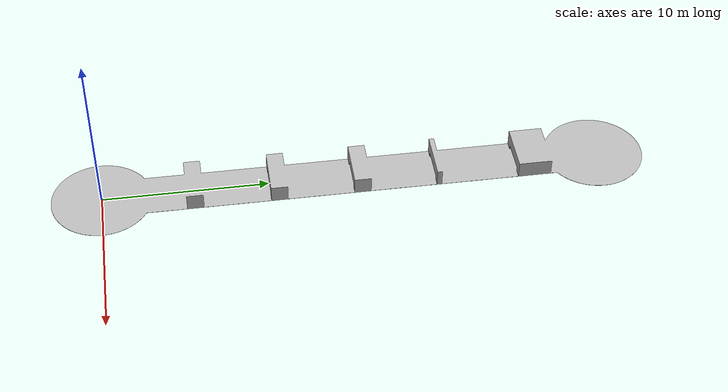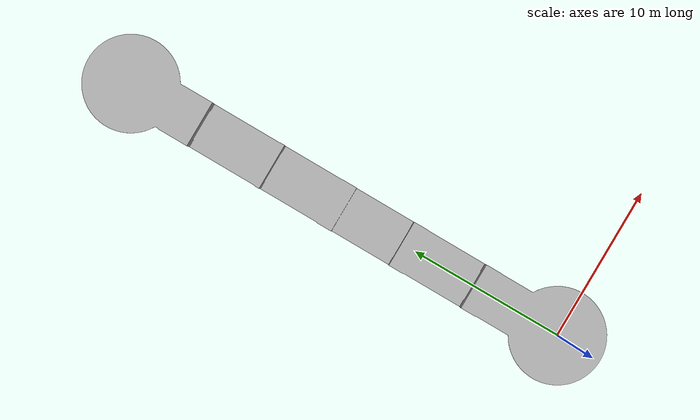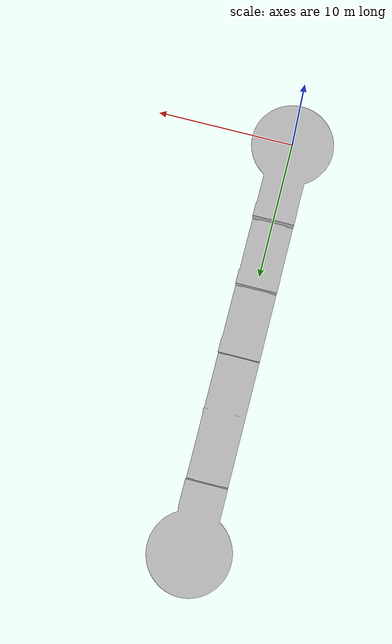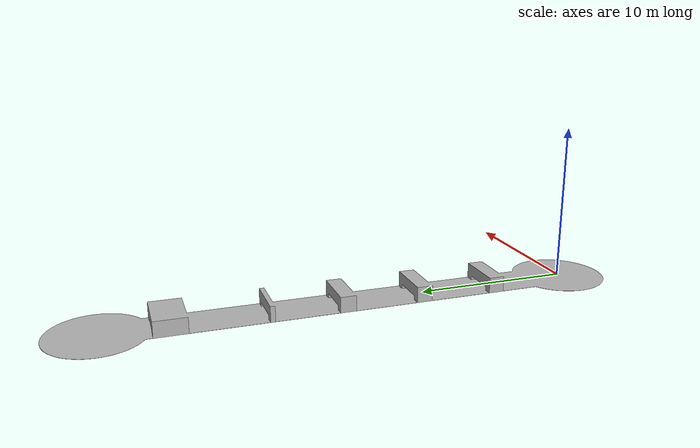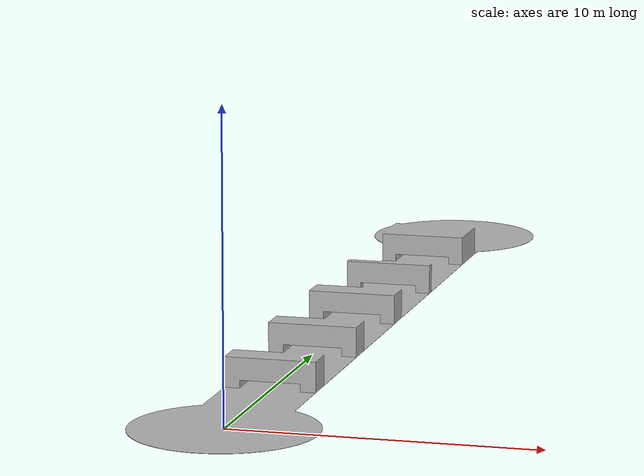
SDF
<?xml version="1.0" ?>
<sdf version="1.5">
  <model name="parkour_1">
    <pose>0 0 0 0 0 0</pose>
    <static>true</static>
    <link name="body">
      <visual name="visual">
        <geometry>
          <mesh><uri>model://parkour_1/media/parkour_1.dae</uri></mesh>
        </geometry>
      </visual>
      <collision name="collision">
        <geometry>
          <mesh><uri>model://parkour_1/media/parkour_1.dae</uri></mesh>
        </geometry>
      </collision>
    </link>
  </model>
</sdf>
